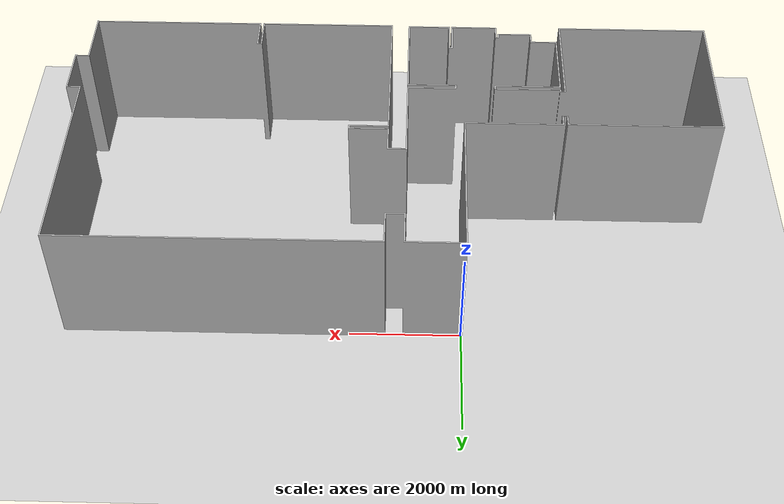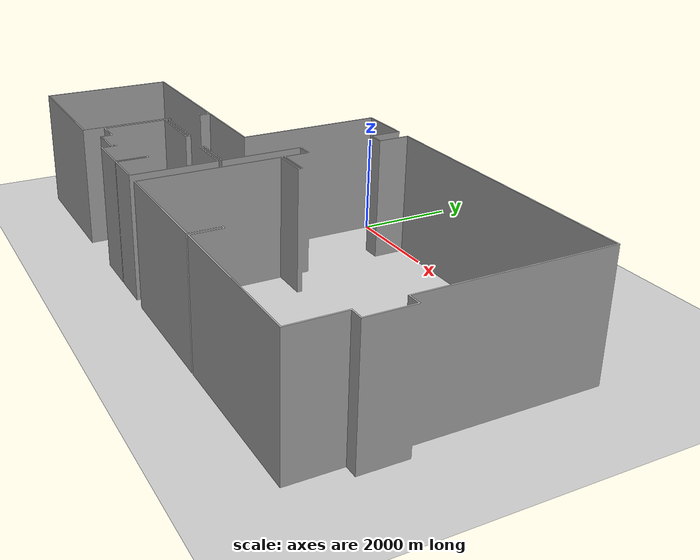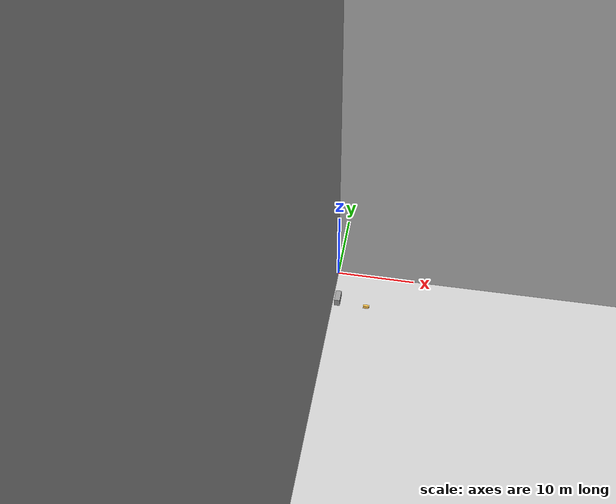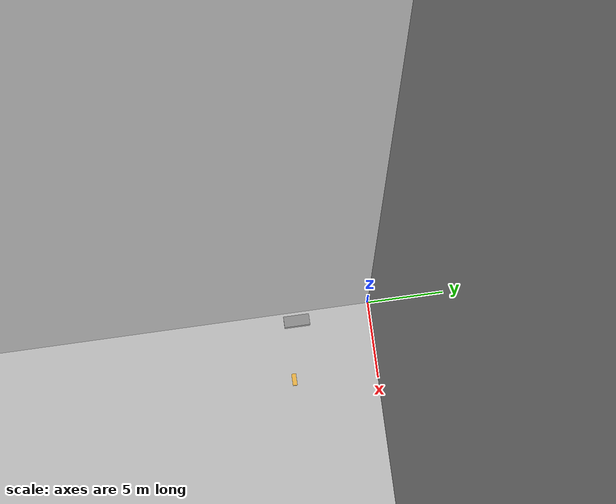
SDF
<sdf version="1.7">
 <world name="apartment">
  <gravity>0 0 -9.8</gravity>
  <magnetic_field>6e-06 2.3e-05 -4.2e-05</magnetic_field>
  <atmosphere type="adiabatic"/>
  <physics type="ode">
   <max_step_size>0.001</max_step_size>
   <real_time_factor>1</real_time_factor>
   <real_time_update_rate>1000</real_time_update_rate>
  </physics>
  <scene><ambient>0.45 0.45 0.4 1</ambient><background>0.7 0.7 0.7 1</background><shadows>1</shadows></scene>
  <model name="ground_plane">
   <static>true</static>
   <link name="link">
    <collision name="collision">
     <geometry><plane><normal>0 0 1</normal><size>100 100</size></plane></geometry>
     <surface>
      <contact><collide_bitmask>65535</collide_bitmask></contact>
      <friction><ode><mu>100</mu><mu2>50</mu2></ode></friction>
     </surface>
    </collision>
    <visual name="visual">
     <cast_shadows>false</cast_shadows>
     <geometry><plane><normal>0 0 1</normal><size>100 100</size></plane></geometry>
     <material>
      <script>
       <uri>model://Floor_room/materials/scripts</uri>
       <uri>model://Floor_room/materials/textures</uri>
       <name>floor_room</name>
      </script>
     </material>
    </visual>
   </link>
  </model>
  <model name="apartment_model">
   <static>true</static>
   <link name="link">
    <collision name="collision">
     <geometry>
      <mesh><scale>1 1 1</scale><uri>model://apartment_model/meshes/apartment_model.dae</uri></mesh>
     </geometry>
    </collision>
    <visual name="visual">
     <geometry>
      <mesh><scale>1 1 1</scale><uri>model://apartment_model/meshes/apartment_model.dae</uri></mesh>
     </geometry>
     <material>
      <script>
       <uri>model://apartment_model/materials/scripts</uri>
       <uri>model://apartment_model/materials/textures</uri>
       <name>apartment_wall</name>
      </script>
     </material>
    </visual>
   </link>
  </model>
  <model name="Box_15x30">
   <link name="Wall">
    <pose>0 0 0.1985 0 -0 0</pose>
    <inertial>
     <mass>5</mass>
     <inertia><ixx>0.3089</ixx><iyy>0.1022</iyy><izz>0.2797</izz><ixy>0</ixy><ixz>0</ixz><iyz>0</iyz></inertia>
    </inertial>
    <collision name="Wall_Collision"><geometry><box><size>0.296 0.764 0.397</size></box></geometry></collision>
    <visual name="Wall_Visual">
     <geometry><box><size>0.296 0.764 0.397</size></box></geometry>
     <material>
      <script><uri>file://media/materials/scripts/gazebo.material</uri><name>Gazebo/Grey</name></script>
      <ambient>1 0.764706 0.305882 1</ambient>
     </material>
    </visual>
   </link>
   <static>1</static>
   <pose>4.4 -5.45 0 0 0 -1.5708</pose>
  </model>
  <model name="6_Cube_StorageE">
   <link name="Wall_0">
    <pose>0 0 0.01 0 -0 0</pose>
    <inertial>
     <mass>1.6201</mass>
     <inertia><ixx>0.0119</ixx><iyy>0.0631</iyy><izz>0.0513</izz><ixy>0</ixy><ixz>0</ixz><iyz>0</iyz></inertia>
    </inertial>
    <collision name="Wall_0_Collision"><geometry><box><size>0.616 0.296 0.02</size></box></geometry></collision>
    <visual name="Wall_0_Visual">
     <geometry><box><size>0.616 0.296 0.02</size></box></geometry>
     <material>
      <script><uri>file://media/materials/scripts/gazebo.material</uri><name>Gazebo/Grey</name></script>
      <ambient>0.105882 0.0509804 0 1</ambient>
     </material>
    </visual>
   </link>
   <joint name="0_2" type="fixed">
    <pose>-0.308 0 0 0 -0 0</pose>
    <parent>Wall_2</parent>
    <child>Wall_0</child>
    <axis><xyz>1 0 0</xyz><limit><lower>-1e+16</lower><upper>1e+16</upper></limit></axis>
   </joint>
   <joint name="0_12" type="fixed">
    <parent>Wall_12</parent>
    <child>Wall_0</child>
    <axis><xyz>0 0 1</xyz><limit><lower>-1e+16</lower><upper>1e+16</upper></limit></axis>
   </joint>
   <joint name="0_4" type="fixed">
    <pose>0.308 0 0 0 -0 0</pose>
    <parent>Wall_4</parent>
    <child>Wall_0</child>
    <axis><xyz>1 0 0</xyz><limit><lower>-1e+16</lower><upper>1e+16</upper></limit></axis>
   </joint>
   <link name="Wall_10">
    <pose>0 0 0.61 0 -0 0</pose>
    <inertial>
     <mass>1.6201</mass>
     <inertia><ixx>0.0119</ixx><iyy>0.0631</iyy><izz>0.0513</izz><ixy>0</ixy><ixz>0</ixz><iyz>0</iyz></inertia>
    </inertial>
    <collision name="Wall_10_Collision"><geometry><box><size>0.616 0.296 0.02</size></box></geometry></collision>
    <visual name="Wall_10_Visual">
     <geometry><box><size>0.616 0.296 0.02</size></box></geometry>
     <material>
      <script><uri>file://media/materials/scripts/gazebo.material</uri><name>Gazebo/Grey</name></script>
      <ambient>0.105882 0.0509804 0 1</ambient>
     </material>
    </visual>
   </link>
   <joint name="10_2" type="fixed">
    <pose>-0.308 0 0 0 -0 0</pose>
    <parent>Wall_2</parent>
    <child>Wall_10</child>
    <axis><xyz>1 0 0</xyz><limit><lower>-1e+16</lower><upper>1e+16</upper></limit></axis>
   </joint>
   <joint name="10_12" type="fixed">
    <parent>Wall_12</parent>
    <child>Wall_10</child>
    <axis><xyz>0 0 1</xyz><limit><lower>-1e+16</lower><upper>1e+16</upper></limit></axis>
   </joint>
   <joint name="10_4" type="fixed">
    <pose>0.308 0 0 0 -0 0</pose>
    <parent>Wall_4</parent>
    <child>Wall_10</child>
    <axis><xyz>1 0 0</xyz><limit><lower>-1e+16</lower><upper>1e+16</upper></limit></axis>
   </joint>
   <link name="Wall_12">
    <pose>0 0 0.4575 0 -0 0</pose>
    <inertial>
     <mass>2.4065</mass>
     <inertia><ixx>0.0177</ixx><iyy>0.1855</iyy><izz>0.168</izz><ixy>0</ixy><ixz>0</ixz><iyz>0</iyz></inertia>
    </inertial>
    <collision name="Wall_12_Collision"><geometry><box><size>0.02 0.296 0.915</size></box></geometry></collision>
    <visual name="Wall_12_Visual">
     <geometry><box><size>0.02 0.296 0.915</size></box></geometry>
     <material>
      <script><uri>file://media/materials/scripts/gazebo.material</uri><name>Gazebo/Grey</name></script>
      <ambient>0.105882 0.0509804 0 1</ambient>
     </material>
    </visual>
   </link>
   <link name="Wall_2">
    <pose>-0.298 0 0.4575 0 -0 0</pose>
    <inertial>
     <mass>2.4065</mass>
     <inertia><ixx>0.0177</ixx><iyy>0.1855</iyy><izz>0.168</izz><ixy>0</ixy><ixz>0</ixz><iyz>0</iyz></inertia>
    </inertial>
    <collision name="Wall_2_Collision"><geometry><box><size>0.02 0.296 0.915</size></box></geometry></collision>
    <visual name="Wall_2_Visual">
     <geometry><box><size>0.02 0.296 0.915</size></box></geometry>
     <material>
      <script><uri>file://media/materials/scripts/gazebo.material</uri><name>Gazebo/Grey</name></script>
      <ambient>0.105882 0.0509804 0 1</ambient>
     </material>
    </visual>
   </link>
   <link name="Wall_4">
    <pose>0.298 0 0.4575 0 -0 0</pose>
    <inertial>
     <mass>2.4065</mass>
     <inertia><ixx>0.0177</ixx><iyy>0.1855</iyy><izz>0.168</izz><ixy>0</ixy><ixz>0</ixz><iyz>0</iyz></inertia>
    </inertial>
    <collision name="Wall_4_Collision"><geometry><box><size>0.02 0.296 0.915</size></box></geometry></collision>
    <visual name="Wall_4_Visual">
     <geometry><box><size>0.02 0.296 0.915</size></box></geometry>
     <material>
      <script><uri>file://media/materials/scripts/gazebo.material</uri><name>Gazebo/Grey</name></script>
      <ambient>0.105882 0.0509804 0 1</ambient>
     </material>
    </visual>
   </link>
   <link name="Wall_6">
    <pose>0 0 0.905 0 -0 0</pose>
    <inertial>
     <mass>1.6201</mass>
     <inertia><ixx>0.0119</ixx><iyy>0.0631</iyy><izz>0.0513</izz><ixy>0</ixy><ixz>0</ixz><iyz>0</iyz></inertia>
    </inertial>
    <collision name="Wall_6_Collision"><geometry><box><size>0.616 0.296 0.02</size></box></geometry></collision>
    <visual name="Wall_6_Visual">
     <geometry><box><size>0.616 0.296 0.02</size></box></geometry>
     <material>
      <script><uri>file://media/materials/scripts/gazebo.material</uri><name>Gazebo/Grey</name></script>
      <ambient>0.105882 0.0509804 0 1</ambient>
     </material>
    </visual>
   </link>
   <joint name="6_2" type="fixed">
    <pose>-0.308 0 0 0 -0 0</pose>
    <parent>Wall_2</parent>
    <child>Wall_6</child>
    <axis><xyz>2 0 0</xyz><limit><lower>-1e+16</lower><upper>1e+16</upper></limit></axis>
   </joint>
   <joint name="6_12" type="fixed">
    <parent>Wall_12</parent>
    <child>Wall_6</child>
    <axis><xyz>0 0 1</xyz><limit><lower>-1e+16</lower><upper>1e+16</upper></limit></axis>
   </joint>
   <joint name="6_4" type="fixed">
    <pose>0.308 0 0 0 -0 0</pose>
    <parent>Wall_4</parent>
    <child>Wall_6</child>
    <axis><xyz>1 0 0</xyz><limit><lower>-1e+16</lower><upper>1e+16</upper></limit></axis>
   </joint>
   <link name="Wall_8">
    <pose>0 0 0.305 0 -0 0</pose>
    <inertial>
     <mass>1.6201</mass>
     <inertia><ixx>0.0119</ixx><iyy>0.0631</iyy><izz>0.0513</izz><ixy>0</ixy><ixz>0</ixz><iyz>0</iyz></inertia>
    </inertial>
    <collision name="Wall_8_Collision"><geometry><box><size>0.616 0.296 0.02</size></box></geometry></collision>
    <visual name="Wall_8_Visual">
     <geometry><box><size>0.616 0.296 0.02</size></box></geometry>
     <material>
      <script><uri>file://media/materials/scripts/gazebo.material</uri><name>Gazebo/Grey</name></script>
      <ambient>0.105882 0.0509804 0 1</ambient>
     </material>
    </visual>
   </link>
   <joint name="8_2" type="fixed">
    <pose>-0.308 0 0 0 -0 0</pose>
    <parent>Wall_2</parent>
    <child>Wall_8</child>
    <axis><xyz>1 0 0</xyz><limit><lower>-1e+16</lower><upper>1e+16</upper></limit></axis>
   </joint>
   <joint name="8_12" type="fixed">
    <parent>Wall_12</parent>
    <child>Wall_8</child>
    <axis><xyz>0 0 1</xyz><limit><lower>-1e+16</lower><upper>1e+16</upper></limit></axis>
   </joint>
   <joint name="8_4" type="fixed">
    <pose>0.308 0 0 0 -0 0</pose>
    <parent>Wall_4</parent>
    <child>Wall_8</child>
    <axis><xyz>1 0 0</xyz><limit><lower>-1e+16</lower><upper>1e+16</upper></limit></axis>
   </joint>
   <static>1</static>
   <pose>-1.45 -3.1 0 0 -0 0</pose>
  </model>
  <model name="bathtub">
   <link name="link_2">
    <pose>-0.146445 -0.484663 0.1 0 -0 0</pose>
    <inertial>
     <mass>240.618</mass>
     <inertia><ixx>108.739</ixx><ixy>0</ixy><ixz>0</ixz><iyy>62.4487</iyy><iyz>0</iyz><izz>66.5329</izz></inertia>
    </inertial>
    <visual name="visual">
     <geometry><box><size>0.710463 1.6773 1.61544</size></box></geometry>
     <material>
      <lighting>1</lighting>
      <script><uri>file://media/materials/scripts/gazebo.material</uri><name>Gazebo/Grey</name></script>
      <ambient>0.97 0.97 0.94 1</ambient>
      <diffuse>0.97 0.97 0.94</diffuse>
      <specular>0 0 0 1</specular>
      <emissive>0 0 0 1</emissive>
      <shader type="vertex"><normal_map>__default__</normal_map></shader>
     </material>
    </visual>
    <collision name="collision">
     <geometry><box><size>0.710463 1.6773 1.61544</size></box></geometry>
     <surface>
      <friction>
       <ode><mu>1</mu><mu2>1</mu2><fdir1>0 0 0</fdir1><slip1>0</slip1><slip2>0</slip2></ode>
       <torsional>
        <coefficient>1</coefficient>
        <patch_radius>0</patch_radius>
        <surface_radius>0</surface_radius>
        <use_patch_radius>1</use_patch_radius>
        <ode><slip>0</slip></ode>
       </torsional>
      </friction>
      <bounce><restitution_coefficient>0</restitution_coefficient><threshold>1e+06</threshold></bounce>
      <contact>
       <collide_without_contact>0</collide_without_contact>
       <collide_without_contact_bitmask>1</collide_without_contact_bitmask>
       <collide_bitmask>1</collide_bitmask>
       <ode>
        <soft_cfm>0</soft_cfm>
        <soft_erp>0.2</soft_erp>
        <kp>1e+13</kp>
        <kd>1</kd>
        <max_vel>0.01</max_vel>
        <min_depth>0</min_depth>
       </ode>
       <bullet>
        <split_impulse>1</split_impulse>
        <split_impulse_penetration_threshold>-0.01</split_impulse_penetration_threshold>
        <soft_cfm>0</soft_cfm>
        <soft_erp>0.2</soft_erp>
        <kp>1e+13</kp>
        <kd>1</kd>
       </bullet>
      </contact>
     </surface>
    </collision>
   </link>
   <static>1</static>
   <pose>0.769463 -4.29233 0 0 -0 0</pose>
  </model>
  <light name="user_spot_light_0" type="spot">
   <pose>5.944 -2.92945 4.20882 -0.495844 0 0</pose>
   <diffuse>0.5 0.5 0.5 1</diffuse>
   <specular>0.1 0.1 0.1 1</specular>
   <direction>0 0 -1</direction>
   <attenuation>
    <range>20</range>
    <constant>0.5</constant>
    <linear>0.01</linear>
    <quadratic>0.001</quadratic>
   </attenuation>
   <cast_shadows>0</cast_shadows>
   <spot><inner_angle>0.6</inner_angle><outer_angle>1</outer_angle><falloff>1</falloff></spot>
  </light>
  <light name="user_spot_light_1" type="spot">
   <pose>3.35623 -3.40832 3.49753 0 0.326796 0.691952</pose>
   <diffuse>0.5 0.5 0.5 1</diffuse>
   <specular>0.1 0.1 0.1 1</specular>
   <direction>0 0 -1</direction>
   <attenuation>
    <range>20</range>
    <constant>0.5</constant>
    <linear>0.01</linear>
    <quadratic>0.001</quadratic>
   </attenuation>
   <cast_shadows>0</cast_shadows>
   <spot><inner_angle>0.6</inner_angle><outer_angle>1</outer_angle><falloff>1</falloff></spot>
  </light>
  <light name="user_spot_light_2" type="spot">
   <pose>1.0943 -1.47972 3.24126 0 -0 0</pose>
   <diffuse>0.5 0.5 0.5 1</diffuse>
   <specular>0.1 0.1 0.1 1</specular>
   <direction>0 0 -1</direction>
   <attenuation>
    <range>20</range>
    <constant>0.5</constant>
    <linear>0.01</linear>
    <quadratic>0.001</quadratic>
   </attenuation>
   <cast_shadows>0</cast_shadows>
   <spot><inner_angle>0.6</inner_angle><outer_angle>1</outer_angle><falloff>1</falloff></spot>
  </light>
  <light name="user_spot_light_3" type="spot">
   <pose>-0.250964 -5.06311 3.21009 0 -0 0</pose>
   <diffuse>0.5 0.5 0.5 1</diffuse>
   <specular>0.1 0.1 0.1 1</specular>
   <direction>0 0 -1</direction>
   <attenuation>
    <range>20</range>
    <constant>0.5</constant>
    <linear>0.01</linear>
    <quadratic>0.001</quadratic>
   </attenuation>
   <cast_shadows>0</cast_shadows>
   <spot><inner_angle>0.6</inner_angle><outer_angle>1</outer_angle><falloff>1</falloff></spot>
  </light>
  <light name="user_spot_light_4" type="spot">
   <pose>-0.417633 -3.37261 2.41283 0 -0.490708 0</pose>
   <diffuse>0.5 0.5 0.5 1</diffuse>
   <specular>0.1 0.1 0.1 1</specular>
   <direction>0 0 -1</direction>
   <attenuation>
    <range>20</range>
    <constant>0.5</constant>
    <linear>0.01</linear>
    <quadratic>0.001</quadratic>
   </attenuation>
   <cast_shadows>0</cast_shadows>
   <spot><inner_angle>0.6</inner_angle><outer_angle>1</outer_angle><falloff>1</falloff></spot>
  </light>
  <light name="user_spot_light_5" type="spot">
   <pose>-3.24227 -4.17586 4.75672 0.33581 -0 0</pose>
   <diffuse>0.5 0.5 0.5 1</diffuse>
   <specular>0.1 0.1 0.1 1</specular>
   <direction>0 0 -1</direction>
   <attenuation>
    <range>20</range>
    <constant>0.5</constant>
    <linear>0.01</linear>
    <quadratic>0.001</quadratic>
   </attenuation>
   <cast_shadows>0</cast_shadows>
   <spot><inner_angle>0.6</inner_angle><outer_angle>1</outer_angle><falloff>1</falloff></spot>
  </light>
  <light name="user_spot_light_6" type="spot">
   <pose>4.99631 -1.60478 3.92644 0 -0 0</pose>
   <diffuse>0.5 0.5 0.5 1</diffuse>
   <specular>0.1 0.1 0.1 1</specular>
   <direction>0 0 -1</direction>
   <attenuation>
    <range>20</range>
    <constant>0.5</constant>
    <linear>0.01</linear>
    <quadratic>0.001</quadratic>
   </attenuation>
   <cast_shadows>0</cast_shadows>
   <spot><inner_angle>0.6</inner_angle><outer_angle>1</outer_angle><falloff>1</falloff></spot>
  </light>
 </world>
</sdf>
